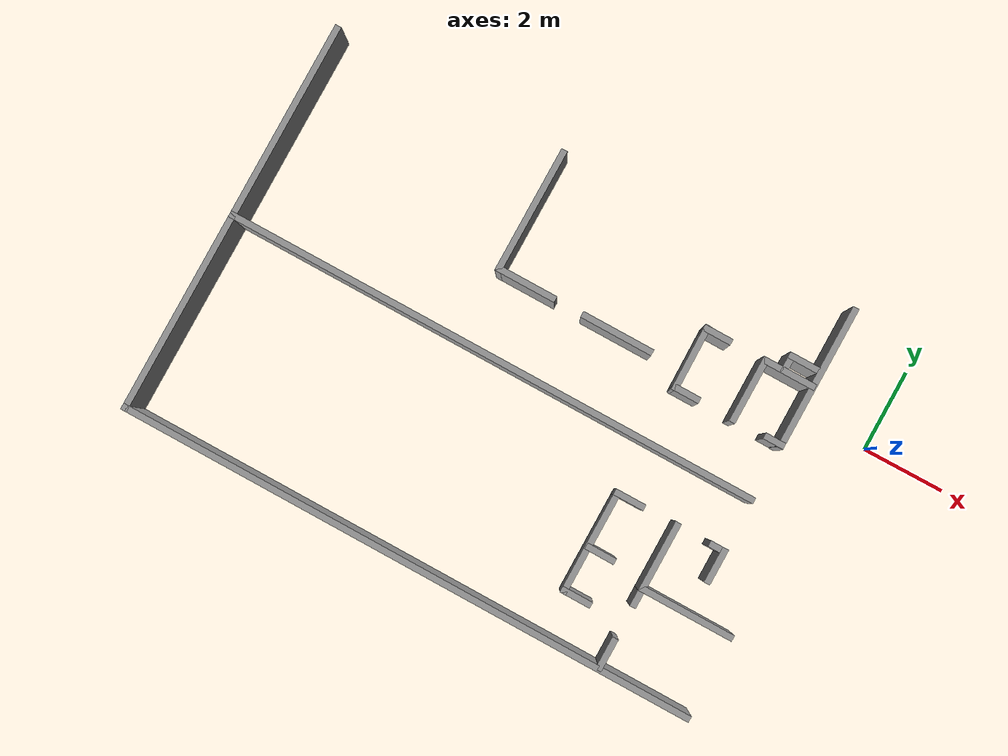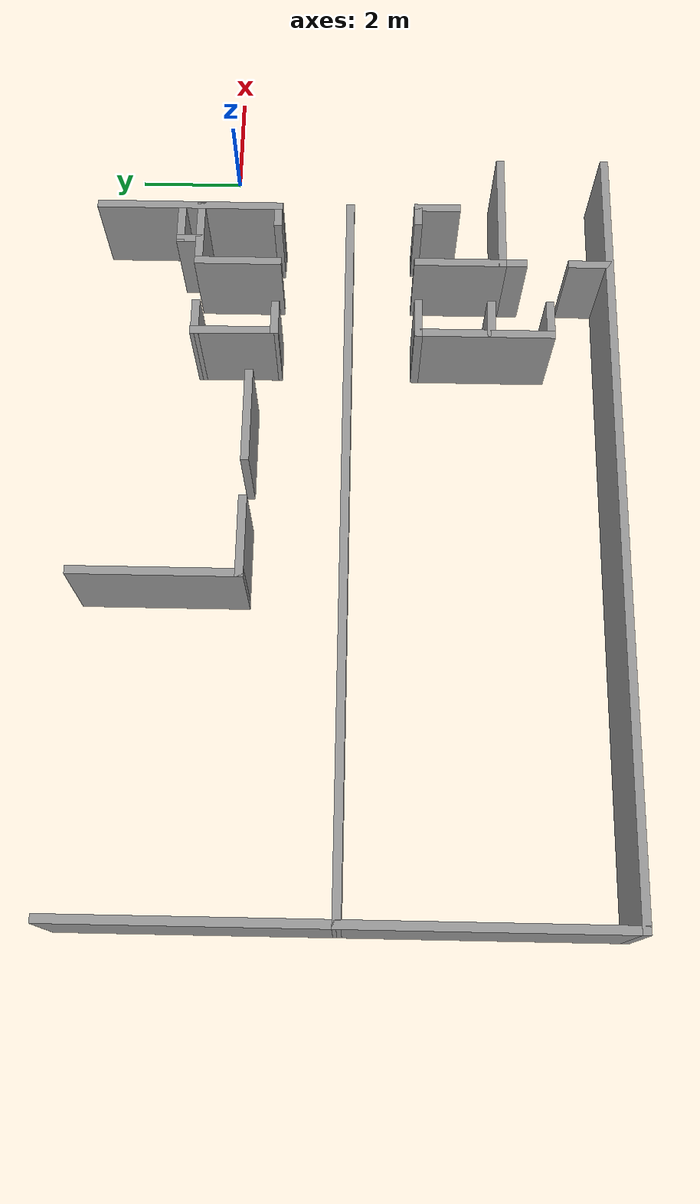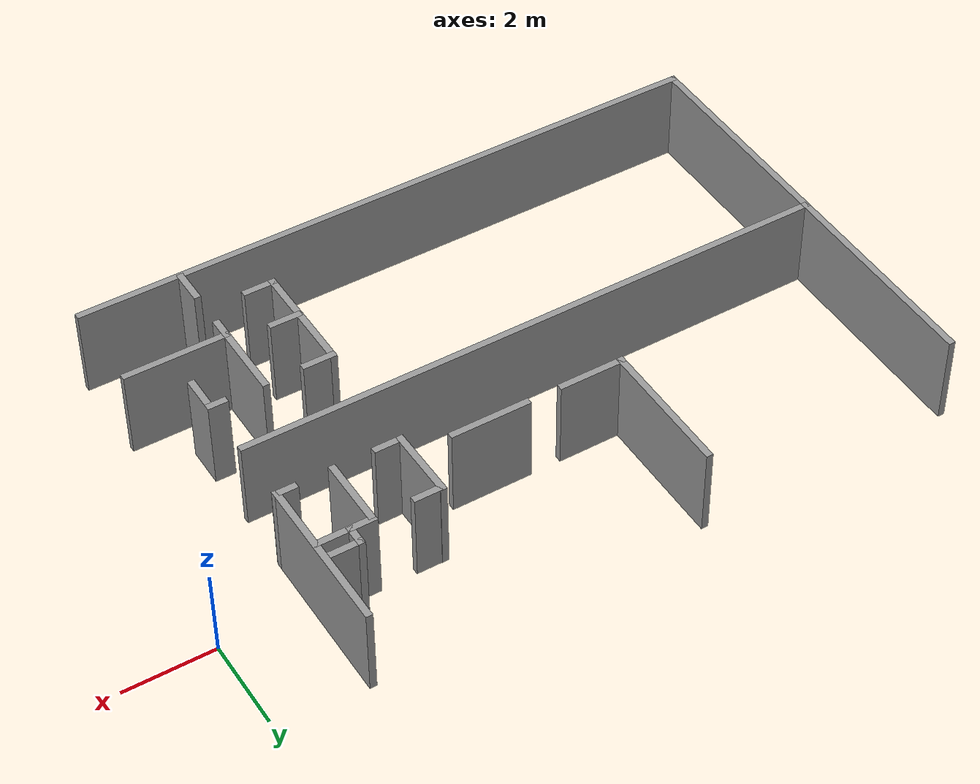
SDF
<sdf version="1.7">
 <model name="HQ">
  <link name="Wall_117">
   <pose>-1.88509 -3.99966 0 0 0 -1.5708</pose>
   <visual name="Wall_117_Visual">
    <pose>0 0 1.25 0 -0 0</pose>
    <geometry><box><size>0.875898 0.15 2</size></box></geometry>
    <material>
     <script><uri>file://media/materials/scripts/gazebo.material</uri><name>Gazebo/Grey</name></script>
     <ambient>1 1 1 1</ambient>
     <shader type="pixel"/>
    </material>
    <meta><layer>0</layer></meta>
   </visual>
   <collision name="Wall_117_Collision">
    <pose>0 0 1.25 0 -0 0</pose>
    <geometry><box><size>0.875898 0.15 2</size></box></geometry>
    <surface>
     <friction>
      <ode><mu>1</mu><mu2>1</mu2><fdir1>0 0 0</fdir1><slip1>0</slip1><slip2>0</slip2></ode>
      <torsional>
       <coefficient>1</coefficient>
       <patch_radius>0</patch_radius>
       <surface_radius>0</surface_radius>
       <use_patch_radius>1</use_patch_radius>
       <ode><slip>0</slip></ode>
      </torsional>
     </friction>
     <bounce><restitution_coefficient>0</restitution_coefficient><threshold>1e+06</threshold></bounce>
     <contact>
      <collide_without_contact>0</collide_without_contact>
      <collide_without_contact_bitmask>1</collide_without_contact_bitmask>
      <collide_bitmask>1</collide_bitmask>
      <ode>
       <soft_cfm>0</soft_cfm>
       <soft_erp>0.2</soft_erp>
       <kp>1e+13</kp>
       <kd>1</kd>
       <max_vel>0.01</max_vel>
       <min_depth>0</min_depth>
      </ode>
      <bullet>
       <split_impulse>1</split_impulse>
       <split_impulse_penetration_threshold>-0.01</split_impulse_penetration_threshold>
       <soft_cfm>0</soft_cfm>
       <soft_erp>0.2</soft_erp>
       <kp>1e+13</kp>
       <kd>1</kd>
      </bullet>
     </contact>
    </surface>
   </collision>
  </link>
  <link name="Wall_122">
   <pose>-1.97205 -5.21705 0 0 -0 3.14159</pose>
   <visual name="Wall_122_Visual">
    <pose>0 0 1.25 0 -0 0</pose>
    <geometry><box><size>2.33526 0.15 2</size></box></geometry>
    <material>
     <script><uri>file://media/materials/scripts/gazebo.material</uri><name>Gazebo/Grey</name></script>
     <ambient>1 1 1 1</ambient>
     <shader type="pixel"/>
    </material>
    <meta><layer>0</layer></meta>
   </visual>
   <collision name="Wall_122_Collision">
    <pose>0 0 1.25 0 -0 0</pose>
    <geometry><box><size>2.33526 0.15 2</size></box></geometry>
    <surface>
     <friction>
      <ode><mu>1</mu><mu2>1</mu2><fdir1>0 0 0</fdir1><slip1>0</slip1><slip2>0</slip2></ode>
      <torsional>
       <coefficient>1</coefficient>
       <patch_radius>0</patch_radius>
       <surface_radius>0</surface_radius>
       <use_patch_radius>1</use_patch_radius>
       <ode><slip>0</slip></ode>
      </torsional>
     </friction>
     <bounce><restitution_coefficient>0</restitution_coefficient><threshold>1e+06</threshold></bounce>
     <contact>
      <collide_without_contact>0</collide_without_contact>
      <collide_without_contact_bitmask>1</collide_without_contact_bitmask>
      <collide_bitmask>1</collide_bitmask>
      <ode>
       <soft_cfm>0</soft_cfm>
       <soft_erp>0.2</soft_erp>
       <kp>1e+13</kp>
       <kd>1</kd>
       <max_vel>0.01</max_vel>
       <min_depth>0</min_depth>
      </ode>
      <bullet>
       <split_impulse>1</split_impulse>
       <split_impulse_penetration_threshold>-0.01</split_impulse_penetration_threshold>
       <soft_cfm>0</soft_cfm>
       <soft_erp>0.2</soft_erp>
       <kp>1e+13</kp>
       <kd>1</kd>
      </bullet>
     </contact>
    </surface>
   </collision>
  </link>
  <link name="Wall_126">
   <pose>-3.06468 -4.42688 0 0 0 -1.5708</pose>
   <visual name="Wall_126_Visual">
    <pose>0 0 1.25 0 -0 0</pose>
    <geometry><box><size>1.73034 0.15 2</size></box></geometry>
    <material>
     <script><uri>file://media/materials/scripts/gazebo.material</uri><name>Gazebo/Grey</name></script>
     <ambient>1 1 1 1</ambient>
     <shader type="pixel"/>
    </material>
    <meta><layer>0</layer></meta>
   </visual>
   <collision name="Wall_126_Collision">
    <pose>0 0 1.25 0 -0 0</pose>
    <geometry><box><size>1.73034 0.15 2</size></box></geometry>
    <surface>
     <friction>
      <ode><mu>1</mu><mu2>1</mu2><fdir1>0 0 0</fdir1><slip1>0</slip1><slip2>0</slip2></ode>
      <torsional>
       <coefficient>1</coefficient>
       <patch_radius>0</patch_radius>
       <surface_radius>0</surface_radius>
       <use_patch_radius>1</use_patch_radius>
       <ode><slip>0</slip></ode>
      </torsional>
     </friction>
     <bounce><restitution_coefficient>0</restitution_coefficient><threshold>1e+06</threshold></bounce>
     <contact>
      <collide_without_contact>0</collide_without_contact>
      <collide_without_contact_bitmask>1</collide_without_contact_bitmask>
      <collide_bitmask>1</collide_bitmask>
      <ode>
       <soft_cfm>0</soft_cfm>
       <soft_erp>0.2</soft_erp>
       <kp>1e+13</kp>
       <kd>1</kd>
       <max_vel>0.01</max_vel>
       <min_depth>0</min_depth>
      </ode>
      <bullet>
       <split_impulse>1</split_impulse>
       <split_impulse_penetration_threshold>-0.01</split_impulse_penetration_threshold>
       <soft_cfm>0</soft_cfm>
       <soft_erp>0.2</soft_erp>
       <kp>1e+13</kp>
       <kd>1</kd>
      </bullet>
     </contact>
    </surface>
   </collision>
  </link>
  <link name="Wall_128">
   <pose>-2.03254 -3.63671 0 0 -0 3.14159</pose>
   <visual name="Wall_128_Visual">
    <pose>0 0 1.25 0 -0 0</pose>
    <geometry><box><size>0.444896 0.15 2</size></box></geometry>
    <material>
     <script><uri>file://media/materials/scripts/gazebo.material</uri><name>Gazebo/Grey</name></script>
     <ambient>1 1 1 1</ambient>
     <shader type="pixel"/>
    </material>
    <meta><layer>0</layer></meta>
   </visual>
   <collision name="Wall_128_Collision">
    <pose>0 0 1.25 0 -0 0</pose>
    <geometry><box><size>0.444896 0.15 2</size></box></geometry>
    <surface>
     <friction>
      <ode><mu>1</mu><mu2>1</mu2><fdir1>0 0 0</fdir1><slip1>0</slip1><slip2>0</slip2></ode>
      <torsional>
       <coefficient>1</coefficient>
       <patch_radius>0</patch_radius>
       <surface_radius>0</surface_radius>
       <use_patch_radius>1</use_patch_radius>
       <ode><slip>0</slip></ode>
      </torsional>
     </friction>
     <bounce><restitution_coefficient>0</restitution_coefficient><threshold>1e+06</threshold></bounce>
     <contact>
      <collide_without_contact>0</collide_without_contact>
      <collide_without_contact_bitmask>1</collide_without_contact_bitmask>
      <collide_bitmask>1</collide_bitmask>
      <ode>
       <soft_cfm>0</soft_cfm>
       <soft_erp>0.2</soft_erp>
       <kp>1e+13</kp>
       <kd>1</kd>
       <max_vel>0.01</max_vel>
       <min_depth>0</min_depth>
      </ode>
      <bullet>
       <split_impulse>1</split_impulse>
       <split_impulse_penetration_threshold>-0.01</split_impulse_penetration_threshold>
       <soft_cfm>0</soft_cfm>
       <soft_erp>0.2</soft_erp>
       <kp>1e+13</kp>
       <kd>1</kd>
      </bullet>
     </contact>
    </surface>
   </collision>
  </link>
  <link name="Wall_130">
   <pose>-3.06468 -5.40986 0 0 0 -1.5708</pose>
   <visual name="Wall_130_Visual">
    <pose>0 0 1.25 0 -0 0</pose>
    <geometry><box><size>0.535707 0.15 2</size></box></geometry>
    <material>
     <script><uri>file://media/materials/scripts/gazebo.material</uri><name>Gazebo/Grey</name></script>
     <ambient>1 1 1 1</ambient>
     <shader type="pixel"/>
    </material>
    <meta><layer>0</layer></meta>
   </visual>
   <collision name="Wall_130_Collision">
    <pose>0 0 1.25 0 -0 0</pose>
    <geometry><box><size>0.535707 0.15 2</size></box></geometry>
    <surface>
     <friction>
      <ode><mu>1</mu><mu2>1</mu2><fdir1>0 0 0</fdir1><slip1>0</slip1><slip2>0</slip2></ode>
      <torsional>
       <coefficient>1</coefficient>
       <patch_radius>0</patch_radius>
       <surface_radius>0</surface_radius>
       <use_patch_radius>1</use_patch_radius>
       <ode><slip>0</slip></ode>
      </torsional>
     </friction>
     <bounce><restitution_coefficient>0</restitution_coefficient><threshold>1e+06</threshold></bounce>
     <contact>
      <collide_without_contact>0</collide_without_contact>
      <collide_without_contact_bitmask>1</collide_without_contact_bitmask>
      <collide_bitmask>1</collide_bitmask>
      <ode>
       <soft_cfm>0</soft_cfm>
       <soft_erp>0.2</soft_erp>
       <kp>1e+13</kp>
       <kd>1</kd>
       <max_vel>0.01</max_vel>
       <min_depth>0</min_depth>
      </ode>
      <bullet>
       <split_impulse>1</split_impulse>
       <split_impulse_penetration_threshold>-0.01</split_impulse_penetration_threshold>
       <soft_cfm>0</soft_cfm>
       <soft_erp>0.2</soft_erp>
       <kp>1e+13</kp>
       <kd>1</kd>
      </bullet>
     </contact>
    </surface>
   </collision>
  </link>
  <link name="Wall_134">
   <pose>-3.06468 -6.85032 0 0 -0 1.5708</pose>
   <visual name="Wall_134_Visual">
    <pose>0 0 1.25 0 -0 0</pose>
    <geometry><box><size>0.800328 0.15 2</size></box></geometry>
    <material>
     <script><uri>file://media/materials/scripts/gazebo.material</uri><name>Gazebo/Grey</name></script>
     <ambient>1 1 1 1</ambient>
     <shader type="pixel"/>
    </material>
    <meta><layer>0</layer></meta>
   </visual>
   <collision name="Wall_134_Collision">
    <pose>0 0 1.25 0 -0 0</pose>
    <geometry><box><size>0.800328 0.15 2</size></box></geometry>
    <surface>
     <friction>
      <ode><mu>1</mu><mu2>1</mu2><fdir1>0 0 0</fdir1><slip1>0</slip1><slip2>0</slip2></ode>
      <torsional>
       <coefficient>1</coefficient>
       <patch_radius>0</patch_radius>
       <surface_radius>0</surface_radius>
       <use_patch_radius>1</use_patch_radius>
       <ode><slip>0</slip></ode>
      </torsional>
     </friction>
     <bounce><restitution_coefficient>0</restitution_coefficient><threshold>1e+06</threshold></bounce>
     <contact>
      <collide_without_contact>0</collide_without_contact>
      <collide_without_contact_bitmask>1</collide_without_contact_bitmask>
      <collide_bitmask>1</collide_bitmask>
      <ode>
       <soft_cfm>0</soft_cfm>
       <soft_erp>0.2</soft_erp>
       <kp>1e+13</kp>
       <kd>1</kd>
       <max_vel>0.01</max_vel>
       <min_depth>0</min_depth>
      </ode>
      <bullet>
       <split_impulse>1</split_impulse>
       <split_impulse_penetration_threshold>-0.01</split_impulse_penetration_threshold>
       <soft_cfm>0</soft_cfm>
       <soft_erp>0.2</soft_erp>
       <kp>1e+13</kp>
       <kd>1</kd>
      </bullet>
     </contact>
    </surface>
   </collision>
  </link>
  <link name="Wall_240">
   <pose>-2.6327 0.685901 0 0 -0 1.5708</pose>
   <visual name="Wall_240_Visual">
    <pose>0 0 1.25 0 -0 0</pose>
    <geometry><box><size>0.490265 0.15 2</size></box></geometry>
    <material>
     <script><uri>file://media/materials/scripts/gazebo.material</uri><name>Gazebo/Grey</name></script>
     <ambient>1 1 1 1</ambient>
     <shader type="pixel"/>
    </material>
    <meta><layer>0</layer></meta>
   </visual>
   <collision name="Wall_240_Collision">
    <pose>0 0 1.25 0 -0 0</pose>
    <geometry><box><size>0.490265 0.15 2</size></box></geometry>
    <surface>
     <friction>
      <ode><mu>1</mu><mu2>1</mu2><fdir1>0 0 0</fdir1><slip1>0</slip1><slip2>0</slip2></ode>
      <torsional>
       <coefficient>1</coefficient>
       <patch_radius>0</patch_radius>
       <surface_radius>0</surface_radius>
       <use_patch_radius>1</use_patch_radius>
       <ode><slip>0</slip></ode>
      </torsional>
     </friction>
     <bounce><restitution_coefficient>0</restitution_coefficient><threshold>1e+06</threshold></bounce>
     <contact>
      <collide_without_contact>0</collide_without_contact>
      <collide_without_contact_bitmask>1</collide_without_contact_bitmask>
      <collide_bitmask>1</collide_bitmask>
      <ode>
       <soft_cfm>0</soft_cfm>
       <soft_erp>0.2</soft_erp>
       <kp>1e+13</kp>
       <kd>1</kd>
       <max_vel>0.01</max_vel>
       <min_depth>0</min_depth>
      </ode>
      <bullet>
       <split_impulse>1</split_impulse>
       <split_impulse_penetration_threshold>-0.01</split_impulse_penetration_threshold>
       <soft_cfm>0</soft_cfm>
       <soft_erp>0.2</soft_erp>
       <kp>1e+13</kp>
       <kd>1</kd>
      </bullet>
     </contact>
    </surface>
   </collision>
  </link>
  <link name="Wall_241">
   <pose>-2.3327 0.856033 0 0 -0 0</pose>
   <visual name="Wall_241_Visual">
    <pose>0 0 1.25 0 -0 0</pose>
    <geometry><box><size>0.75 0.15 2</size></box></geometry>
    <material>
     <script><uri>file://media/materials/scripts/gazebo.material</uri><name>Gazebo/Grey</name></script>
     <ambient>1 1 1 1</ambient>
     <shader type="pixel"/>
    </material>
    <meta><layer>0</layer></meta>
   </visual>
   <collision name="Wall_241_Collision">
    <pose>0 0 1.25 0 -0 0</pose>
    <geometry><box><size>0.75 0.15 2</size></box></geometry>
    <surface>
     <friction>
      <ode><mu>1</mu><mu2>1</mu2><fdir1>0 0 0</fdir1><slip1>0</slip1><slip2>0</slip2></ode>
      <torsional>
       <coefficient>1</coefficient>
       <patch_radius>0</patch_radius>
       <surface_radius>0</surface_radius>
       <use_patch_radius>1</use_patch_radius>
       <ode><slip>0</slip></ode>
      </torsional>
     </friction>
     <bounce><restitution_coefficient>0</restitution_coefficient><threshold>1e+06</threshold></bounce>
     <contact>
      <collide_without_contact>0</collide_without_contact>
      <collide_without_contact_bitmask>1</collide_without_contact_bitmask>
      <collide_bitmask>1</collide_bitmask>
      <ode>
       <soft_cfm>0</soft_cfm>
       <soft_erp>0.2</soft_erp>
       <kp>1e+13</kp>
       <kd>1</kd>
       <max_vel>0.01</max_vel>
       <min_depth>0</min_depth>
      </ode>
      <bullet>
       <split_impulse>1</split_impulse>
       <split_impulse_penetration_threshold>-0.01</split_impulse_penetration_threshold>
       <soft_cfm>0</soft_cfm>
       <soft_erp>0.2</soft_erp>
       <kp>1e+13</kp>
       <kd>1</kd>
      </bullet>
     </contact>
    </surface>
   </collision>
  </link>
  <link name="Wall_244">
   <pose>-4.25062 -3.64086 0 0 -0 3.14159</pose>
   <visual name="Wall_244_Visual">
    <pose>0 0 1.25 0 -0 0</pose>
    <geometry><box><size>0.75 0.15 2</size></box></geometry>
    <material>
     <script><uri>file://media/materials/scripts/gazebo.material</uri><name>Gazebo/Grey</name></script>
     <ambient>1 1 1 1</ambient>
     <shader type="pixel"/>
    </material>
    <meta><layer>0</layer></meta>
   </visual>
   <collision name="Wall_244_Collision">
    <pose>0 0 1.25 0 -0 0</pose>
    <geometry><box><size>0.75 0.15 2</size></box></geometry>
    <surface>
     <friction>
      <ode><mu>1</mu><mu2>1</mu2><fdir1>0 0 0</fdir1><slip1>0</slip1><slip2>0</slip2></ode>
      <torsional>
       <coefficient>1</coefficient>
       <patch_radius>0</patch_radius>
       <surface_radius>0</surface_radius>
       <use_patch_radius>1</use_patch_radius>
       <ode><slip>0</slip></ode>
      </torsional>
     </friction>
     <bounce><restitution_coefficient>0</restitution_coefficient><threshold>1e+06</threshold></bounce>
     <contact>
      <collide_without_contact>0</collide_without_contact>
      <collide_without_contact_bitmask>1</collide_without_contact_bitmask>
      <collide_bitmask>1</collide_bitmask>
      <ode>
       <soft_cfm>0</soft_cfm>
       <soft_erp>0.2</soft_erp>
       <kp>1e+13</kp>
       <kd>1</kd>
       <max_vel>0.01</max_vel>
       <min_depth>0</min_depth>
      </ode>
      <bullet>
       <split_impulse>1</split_impulse>
       <split_impulse_penetration_threshold>-0.01</split_impulse_penetration_threshold>
       <soft_cfm>0</soft_cfm>
       <soft_erp>0.2</soft_erp>
       <kp>1e+13</kp>
       <kd>1</kd>
      </bullet>
     </contact>
    </surface>
   </collision>
  </link>
  <link name="Wall_247">
   <pose>-4.55062 -4.85987 0 0 0 -1.5708</pose>
   <visual name="Wall_247_Visual">
    <pose>0 0 1.25 0 -0 0</pose>
    <geometry><box><size>2.58803 0.15 2</size></box></geometry>
    <material>
     <script><uri>file://media/materials/scripts/gazebo.material</uri><name>Gazebo/Grey</name></script>
     <ambient>1 1 1 1</ambient>
     <shader type="pixel"/>
    </material>
    <meta><layer>0</layer></meta>
   </visual>
   <collision name="Wall_247_Collision">
    <pose>0 0 1.25 0 -0 0</pose>
    <geometry><box><size>2.58803 0.15 2</size></box></geometry>
    <surface>
     <friction>
      <ode><mu>1</mu><mu2>1</mu2><fdir1>0 0 0</fdir1><slip1>0</slip1><slip2>0</slip2></ode>
      <torsional>
       <coefficient>1</coefficient>
       <patch_radius>0</patch_radius>
       <surface_radius>0</surface_radius>
       <use_patch_radius>1</use_patch_radius>
       <ode><slip>0</slip></ode>
      </torsional>
     </friction>
     <bounce><restitution_coefficient>0</restitution_coefficient><threshold>1e+06</threshold></bounce>
     <contact>
      <collide_without_contact>0</collide_without_contact>
      <collide_without_contact_bitmask>1</collide_without_contact_bitmask>
      <collide_bitmask>1</collide_bitmask>
      <ode>
       <soft_cfm>0</soft_cfm>
       <soft_erp>0.2</soft_erp>
       <kp>1e+13</kp>
       <kd>1</kd>
       <max_vel>0.01</max_vel>
       <min_depth>0</min_depth>
      </ode>
      <bullet>
       <split_impulse>1</split_impulse>
       <split_impulse_penetration_threshold>-0.01</split_impulse_penetration_threshold>
       <soft_cfm>0</soft_cfm>
       <soft_erp>0.2</soft_erp>
       <kp>1e+13</kp>
       <kd>1</kd>
      </bullet>
     </contact>
    </surface>
   </collision>
  </link>
  <link name="Wall_251">
   <pose>-4.25062 -6.07887 0 0 -0 0</pose>
   <visual name="Wall_251_Visual">
    <pose>0 0 1.25 0 -0 0</pose>
    <geometry><box><size>0.75 0.15 2</size></box></geometry>
    <material>
     <script><uri>file://media/materials/scripts/gazebo.material</uri><name>Gazebo/Grey</name></script>
     <ambient>1 1 1 1</ambient>
     <shader type="pixel"/>
    </material>
    <meta><layer>0</layer></meta>
   </visual>
   <collision name="Wall_251_Collision">
    <pose>0 0 1.25 0 -0 0</pose>
    <geometry><box><size>0.75 0.15 2</size></box></geometry>
    <surface>
     <friction>
      <ode><mu>1</mu><mu2>1</mu2><fdir1>0 0 0</fdir1><slip1>0</slip1><slip2>0</slip2></ode>
      <torsional>
       <coefficient>1</coefficient>
       <patch_radius>0</patch_radius>
       <surface_radius>0</surface_radius>
       <use_patch_radius>1</use_patch_radius>
       <ode><slip>0</slip></ode>
      </torsional>
     </friction>
     <bounce><restitution_coefficient>0</restitution_coefficient><threshold>1e+06</threshold></bounce>
     <contact>
      <collide_without_contact>0</collide_without_contact>
      <collide_without_contact_bitmask>1</collide_without_contact_bitmask>
      <collide_bitmask>1</collide_bitmask>
      <ode>
       <soft_cfm>0</soft_cfm>
       <soft_erp>0.2</soft_erp>
       <kp>1e+13</kp>
       <kd>1</kd>
       <max_vel>0.01</max_vel>
       <min_depth>0</min_depth>
      </ode>
      <bullet>
       <split_impulse>1</split_impulse>
       <split_impulse_penetration_threshold>-0.01</split_impulse_penetration_threshold>
       <soft_cfm>0</soft_cfm>
       <soft_erp>0.2</soft_erp>
       <kp>1e+13</kp>
       <kd>1</kd>
      </bullet>
     </contact>
    </surface>
   </collision>
  </link>
  <link name="Wall_258">
   <pose>-4.23912 -4.98862 0 0 -0 3.13379</pose>
   <visual name="Wall_258_Visual">
    <pose>0 0 1.25 0 -0 0</pose>
    <geometry><box><size>0.727018 0.15 2</size></box></geometry>
    <material>
     <script><uri>file://media/materials/scripts/gazebo.material</uri><name>Gazebo/Grey</name></script>
     <ambient>1 1 1 1</ambient>
     <shader type="pixel"/>
    </material>
    <meta><layer>0</layer></meta>
   </visual>
   <collision name="Wall_258_Collision">
    <pose>0 0 1.25 0 -0 0</pose>
    <geometry><box><size>0.727018 0.15 2</size></box></geometry>
    <surface>
     <friction>
      <ode><mu>1</mu><mu2>1</mu2><fdir1>0 0 0</fdir1><slip1>0</slip1><slip2>0</slip2></ode>
      <torsional>
       <coefficient>1</coefficient>
       <patch_radius>0</patch_radius>
       <surface_radius>0</surface_radius>
       <use_patch_radius>1</use_patch_radius>
       <ode><slip>0</slip></ode>
      </torsional>
     </friction>
     <bounce><restitution_coefficient>0</restitution_coefficient><threshold>1e+06</threshold></bounce>
     <contact>
      <collide_without_contact>0</collide_without_contact>
      <collide_without_contact_bitmask>1</collide_without_contact_bitmask>
      <collide_bitmask>1</collide_bitmask>
      <ode>
       <soft_cfm>0</soft_cfm>
       <soft_erp>0.2</soft_erp>
       <kp>1e+13</kp>
       <kd>1</kd>
       <max_vel>0.01</max_vel>
       <min_depth>0</min_depth>
      </ode>
      <bullet>
       <split_impulse>1</split_impulse>
       <split_impulse_penetration_threshold>-0.01</split_impulse_penetration_threshold>
       <soft_cfm>0</soft_cfm>
       <soft_erp>0.2</soft_erp>
       <kp>1e+13</kp>
       <kd>1</kd>
      </bullet>
     </contact>
    </surface>
   </collision>
  </link>
  <link name="Wall_31">
   <pose>-7.9114 -7.22017 0 0 -0 3.14159</pose>
   <visual name="Wall_31_Visual">
    <pose>0 0 1.25 0 -0 0</pose>
    <geometry><box><size>14.25 0.15 2</size></box></geometry>
    <material>
     <script><uri>file://media/materials/scripts/gazebo.material</uri><name>Gazebo/Grey</name></script>
     <ambient>1 1 1 1</ambient>
     <shader type="pixel"/>
    </material>
    <meta><layer>0</layer></meta>
   </visual>
   <collision name="Wall_31_Collision">
    <pose>0 0 1.25 0 -0 0</pose>
    <geometry><box><size>14.25 0.15 2</size></box></geometry>
    <surface>
     <friction>
      <ode><mu>1</mu><mu2>1</mu2><fdir1>0 0 0</fdir1><slip1>0</slip1><slip2>0</slip2></ode>
      <torsional>
       <coefficient>1</coefficient>
       <patch_radius>0</patch_radius>
       <surface_radius>0</surface_radius>
       <use_patch_radius>1</use_patch_radius>
       <ode><slip>0</slip></ode>
      </torsional>
     </friction>
     <bounce><restitution_coefficient>0</restitution_coefficient><threshold>1e+06</threshold></bounce>
     <contact>
      <collide_without_contact>0</collide_without_contact>
      <collide_without_contact_bitmask>1</collide_without_contact_bitmask>
      <collide_bitmask>1</collide_bitmask>
      <ode>
       <soft_cfm>0</soft_cfm>
       <soft_erp>0.2</soft_erp>
       <kp>1e+13</kp>
       <kd>1</kd>
       <max_vel>0.01</max_vel>
       <min_depth>0</min_depth>
      </ode>
      <bullet>
       <split_impulse>1</split_impulse>
       <split_impulse_penetration_threshold>-0.01</split_impulse_penetration_threshold>
       <soft_cfm>0</soft_cfm>
       <soft_erp>0.2</soft_erp>
       <kp>1e+13</kp>
       <kd>1</kd>
      </bullet>
     </contact>
    </surface>
   </collision>
  </link>
  <link name="Wall_33">
   <pose>-14.9607 -4.79146 0 0 -0 1.57052</pose>
   <visual name="Wall_33_Visual">
    <pose>0 0 1.25 0 -0 0</pose>
    <geometry><box><size>5.00744 0.15 2</size></box></geometry>
    <material>
     <script><uri>file://media/materials/scripts/gazebo.material</uri><name>Gazebo/Grey</name></script>
     <ambient>1 1 1 1</ambient>
     <shader type="pixel"/>
    </material>
    <meta><layer>0</layer></meta>
   </visual>
   <collision name="Wall_33_Collision">
    <pose>0 0 1.25 0 -0 0</pose>
    <geometry><box><size>5.00744 0.15 2</size></box></geometry>
    <surface>
     <friction>
      <ode><mu>1</mu><mu2>1</mu2><fdir1>0 0 0</fdir1><slip1>0</slip1><slip2>0</slip2></ode>
      <torsional>
       <coefficient>1</coefficient>
       <patch_radius>0</patch_radius>
       <surface_radius>0</surface_radius>
       <use_patch_radius>1</use_patch_radius>
       <ode><slip>0</slip></ode>
      </torsional>
     </friction>
     <bounce><restitution_coefficient>0</restitution_coefficient><threshold>1e+06</threshold></bounce>
     <contact>
      <collide_without_contact>0</collide_without_contact>
      <collide_without_contact_bitmask>1</collide_without_contact_bitmask>
      <collide_bitmask>1</collide_bitmask>
      <ode>
       <soft_cfm>0</soft_cfm>
       <soft_erp>0.2</soft_erp>
       <kp>1e+13</kp>
       <kd>1</kd>
       <max_vel>0.01</max_vel>
       <min_depth>0</min_depth>
      </ode>
      <bullet>
       <split_impulse>1</split_impulse>
       <split_impulse_penetration_threshold>-0.01</split_impulse_penetration_threshold>
       <soft_cfm>0</soft_cfm>
       <soft_erp>0.2</soft_erp>
       <kp>1e+13</kp>
       <kd>1</kd>
      </bullet>
     </contact>
    </surface>
   </collision>
  </link>
  <link name="Wall_34">
   <pose>-8.43629 -2.35401 0 0 -0 0.00134</pose>
   <visual name="Wall_34_Visual">
    <pose>0 0 1.25 0 -0 0</pose>
    <geometry><box><size>13.1976 0.15 2</size></box></geometry>
    <material>
     <script><uri>file://media/materials/scripts/gazebo.material</uri><name>Gazebo/Grey</name></script>
     <ambient>1 1 1 1</ambient>
     <shader type="pixel"/>
    </material>
    <meta><layer>0</layer></meta>
   </visual>
   <collision name="Wall_34_Collision">
    <pose>0 0 1.25 0 -0 0</pose>
    <geometry><box><size>13.1976 0.15 2</size></box></geometry>
    <surface>
     <friction>
      <ode><mu>1</mu><mu2>1</mu2><fdir1>0 0 0</fdir1><slip1>0</slip1><slip2>0</slip2></ode>
      <torsional>
       <coefficient>1</coefficient>
       <patch_radius>0</patch_radius>
       <surface_radius>0</surface_radius>
       <use_patch_radius>1</use_patch_radius>
       <ode><slip>0</slip></ode>
      </torsional>
     </friction>
     <bounce><restitution_coefficient>0</restitution_coefficient><threshold>1e+06</threshold></bounce>
     <contact>
      <collide_without_contact>0</collide_without_contact>
      <collide_without_contact_bitmask>1</collide_without_contact_bitmask>
      <collide_bitmask>1</collide_bitmask>
      <ode>
       <soft_cfm>0</soft_cfm>
       <soft_erp>0.2</soft_erp>
       <kp>1e+13</kp>
       <kd>1</kd>
       <max_vel>0.01</max_vel>
       <min_depth>0</min_depth>
      </ode>
      <bullet>
       <split_impulse>1</split_impulse>
       <split_impulse_penetration_threshold>-0.01</split_impulse_penetration_threshold>
       <soft_cfm>0</soft_cfm>
       <soft_erp>0.2</soft_erp>
       <kp>1e+13</kp>
       <kd>1</kd>
      </bullet>
     </contact>
    </surface>
   </collision>
  </link>
  <link name="Wall_36">
   <pose>-14.9601 0.007151 0 0 -0 1.5708</pose>
   <visual name="Wall_36_Visual">
    <pose>0 0 1.25 0 -0 0</pose>
    <geometry><box><size>4.88994 0.15 2</size></box></geometry>
    <material>
     <script><uri>file://media/materials/scripts/gazebo.material</uri><name>Gazebo/Grey</name></script>
     <ambient>1 1 1 1</ambient>
     <shader type="pixel"/>
    </material>
    <meta><layer>0</layer></meta>
   </visual>
   <collision name="Wall_36_Collision">
    <pose>0 0 1.25 0 -0 0</pose>
    <geometry><box><size>4.88994 0.15 2</size></box></geometry>
    <surface>
     <friction>
      <ode><mu>1</mu><mu2>1</mu2><fdir1>0 0 0</fdir1><slip1>0</slip1><slip2>0</slip2></ode>
      <torsional>
       <coefficient>1</coefficient>
       <patch_radius>0</patch_radius>
       <surface_radius>0</surface_radius>
       <use_patch_radius>1</use_patch_radius>
       <ode><slip>0</slip></ode>
      </torsional>
     </friction>
     <bounce><restitution_coefficient>0</restitution_coefficient><threshold>1e+06</threshold></bounce>
     <contact>
      <collide_without_contact>0</collide_without_contact>
      <collide_without_contact_bitmask>1</collide_without_contact_bitmask>
      <collide_bitmask>1</collide_bitmask>
      <ode>
       <soft_cfm>0</soft_cfm>
       <soft_erp>0.2</soft_erp>
       <kp>1e+13</kp>
       <kd>1</kd>
       <max_vel>0.01</max_vel>
       <min_depth>0</min_depth>
      </ode>
      <bullet>
       <split_impulse>1</split_impulse>
       <split_impulse_penetration_threshold>-0.01</split_impulse_penetration_threshold>
       <soft_cfm>0</soft_cfm>
       <soft_erp>0.2</soft_erp>
       <kp>1e+13</kp>
       <kd>1</kd>
      </bullet>
     </contact>
    </surface>
   </collision>
  </link>
  <link name="Wall_45">
   <pose>-1.9023 0.710551 0 0 0 -1.5708</pose>
   <visual name="Wall_45_Visual">
    <pose>0 0 1.25 0 -0 0</pose>
    <geometry><box><size>3.53478 0.15 2</size></box></geometry>
    <material>
     <script><uri>file://media/materials/scripts/gazebo.material</uri><name>Gazebo/Grey</name></script>
     <ambient>1 1 1 1</ambient>
     <shader type="pixel"/>
    </material>
    <meta><layer>0</layer></meta>
   </visual>
   <collision name="Wall_45_Collision">
    <pose>0 0 1.25 0 -0 0</pose>
    <geometry><box><size>3.53478 0.15 2</size></box></geometry>
    <surface>
     <friction>
      <ode><mu>1</mu><mu2>1</mu2><fdir1>0 0 0</fdir1><slip1>0</slip1><slip2>0</slip2></ode>
      <torsional>
       <coefficient>1</coefficient>
       <patch_radius>0</patch_radius>
       <surface_radius>0</surface_radius>
       <use_patch_radius>1</use_patch_radius>
       <ode><slip>0</slip></ode>
      </torsional>
     </friction>
     <bounce><restitution_coefficient>0</restitution_coefficient><threshold>1e+06</threshold></bounce>
     <contact>
      <collide_without_contact>0</collide_without_contact>
      <collide_without_contact_bitmask>1</collide_without_contact_bitmask>
      <collide_bitmask>1</collide_bitmask>
      <ode>
       <soft_cfm>0</soft_cfm>
       <soft_erp>0.2</soft_erp>
       <kp>1e+13</kp>
       <kd>1</kd>
       <max_vel>0.01</max_vel>
       <min_depth>0</min_depth>
      </ode>
      <bullet>
       <split_impulse>1</split_impulse>
       <split_impulse_penetration_threshold>-0.01</split_impulse_penetration_threshold>
       <soft_cfm>0</soft_cfm>
       <soft_erp>0.2</soft_erp>
       <kp>1e+13</kp>
       <kd>1</kd>
      </bullet>
     </contact>
    </surface>
   </collision>
  </link>
  <link name="Wall_47">
   <pose>-2.0773 -0.973145 0 0 -0 3.14159</pose>
   <visual name="Wall_47_Visual">
    <pose>0 0 1.25 0 -0 0</pose>
    <geometry><box><size>0.5 0.15 2</size></box></geometry>
    <material>
     <script><uri>file://media/materials/scripts/gazebo.material</uri><name>Gazebo/Grey</name></script>
     <ambient>1 1 1 1</ambient>
     <shader type="pixel"/>
    </material>
    <meta><layer>0</layer></meta>
   </visual>
   <collision name="Wall_47_Collision">
    <pose>0 0 1.25 0 -0 0</pose>
    <geometry><box><size>0.5 0.15 2</size></box></geometry>
    <surface>
     <friction>
      <ode><mu>1</mu><mu2>1</mu2><fdir1>0 0 0</fdir1><slip1>0</slip1><slip2>0</slip2></ode>
      <torsional>
       <coefficient>1</coefficient>
       <patch_radius>0</patch_radius>
       <surface_radius>0</surface_radius>
       <use_patch_radius>1</use_patch_radius>
       <ode><slip>0</slip></ode>
      </torsional>
     </friction>
     <bounce><restitution_coefficient>0</restitution_coefficient><threshold>1e+06</threshold></bounce>
     <contact>
      <collide_without_contact>0</collide_without_contact>
      <collide_without_contact_bitmask>1</collide_without_contact_bitmask>
      <collide_bitmask>1</collide_bitmask>
      <ode>
       <soft_cfm>0</soft_cfm>
       <soft_erp>0.2</soft_erp>
       <kp>1e+13</kp>
       <kd>1</kd>
       <max_vel>0.01</max_vel>
       <min_depth>0</min_depth>
      </ode>
      <bullet>
       <split_impulse>1</split_impulse>
       <split_impulse_penetration_threshold>-0.01</split_impulse_penetration_threshold>
       <soft_cfm>0</soft_cfm>
       <soft_erp>0.2</soft_erp>
       <kp>1e+13</kp>
       <kd>1</kd>
      </bullet>
     </contact>
    </surface>
   </collision>
  </link>
  <link name="Wall_49">
   <pose>-3.09928 -0.248315 0 0 -0 1.5708</pose>
   <visual name="Wall_49_Visual">
    <pose>0 0 1.25 0 -0 0</pose>
    <geometry><box><size>1.62826 0.15 2</size></box></geometry>
    <material>
     <script><uri>file://media/materials/scripts/gazebo.material</uri><name>Gazebo/Grey</name></script>
     <ambient>1 1 1 1</ambient>
     <shader type="pixel"/>
    </material>
    <meta><layer>0</layer></meta>
   </visual>
   <collision name="Wall_49_Collision">
    <pose>0 0 1.25 0 -0 0</pose>
    <geometry><box><size>1.62826 0.15 2</size></box></geometry>
    <surface>
     <friction>
      <ode><mu>1</mu><mu2>1</mu2><fdir1>0 0 0</fdir1><slip1>0</slip1><slip2>0</slip2></ode>
      <torsional>
       <coefficient>1</coefficient>
       <patch_radius>0</patch_radius>
       <surface_radius>0</surface_radius>
       <use_patch_radius>1</use_patch_radius>
       <ode><slip>0</slip></ode>
      </torsional>
     </friction>
     <bounce><restitution_coefficient>0</restitution_coefficient><threshold>1e+06</threshold></bounce>
     <contact>
      <collide_without_contact>0</collide_without_contact>
      <collide_without_contact_bitmask>1</collide_without_contact_bitmask>
      <collide_bitmask>1</collide_bitmask>
      <ode>
       <soft_cfm>0</soft_cfm>
       <soft_erp>0.2</soft_erp>
       <kp>1e+13</kp>
       <kd>1</kd>
       <max_vel>0.01</max_vel>
       <min_depth>0</min_depth>
      </ode>
      <bullet>
       <split_impulse>1</split_impulse>
       <split_impulse_penetration_threshold>-0.01</split_impulse_penetration_threshold>
       <soft_cfm>0</soft_cfm>
       <soft_erp>0.2</soft_erp>
       <kp>1e+13</kp>
       <kd>1</kd>
      </bullet>
     </contact>
    </surface>
   </collision>
  </link>
  <link name="Wall_50">
   <pose>-2.51232 0.490815 0 0 -0 0</pose>
   <visual name="Wall_50_Visual">
    <pose>0 0 1.25 0 -0 0</pose>
    <geometry><box><size>1.32391 0.15 2</size></box></geometry>
    <material>
     <script><uri>file://media/materials/scripts/gazebo.material</uri><name>Gazebo/Grey</name></script>
     <ambient>1 1 1 1</ambient>
     <shader type="pixel"/>
    </material>
    <meta><layer>0</layer></meta>
   </visual>
   <collision name="Wall_50_Collision">
    <pose>0 0 1.25 0 -0 0</pose>
    <geometry><box><size>1.32391 0.15 2</size></box></geometry>
    <surface>
     <friction>
      <ode><mu>1</mu><mu2>1</mu2><fdir1>0 0 0</fdir1><slip1>0</slip1><slip2>0</slip2></ode>
      <torsional>
       <coefficient>1</coefficient>
       <patch_radius>0</patch_radius>
       <surface_radius>0</surface_radius>
       <use_patch_radius>1</use_patch_radius>
       <ode><slip>0</slip></ode>
      </torsional>
     </friction>
     <bounce><restitution_coefficient>0</restitution_coefficient><threshold>1e+06</threshold></bounce>
     <contact>
      <collide_without_contact>0</collide_without_contact>
      <collide_without_contact_bitmask>1</collide_without_contact_bitmask>
      <collide_bitmask>1</collide_bitmask>
      <ode>
       <soft_cfm>0</soft_cfm>
       <soft_erp>0.2</soft_erp>
       <kp>1e+13</kp>
       <kd>1</kd>
       <max_vel>0.01</max_vel>
       <min_depth>0</min_depth>
      </ode>
      <bullet>
       <split_impulse>1</split_impulse>
       <split_impulse_penetration_threshold>-0.01</split_impulse_penetration_threshold>
       <soft_cfm>0</soft_cfm>
       <soft_erp>0.2</soft_erp>
       <kp>1e+13</kp>
       <kd>1</kd>
      </bullet>
     </contact>
    </surface>
   </collision>
  </link>
  <link name="Wall_55">
   <pose>-4.56015 -0.248315 0 0 -0 1.58256</pose>
   <visual name="Wall_55_Visual">
    <pose>0 0 1.25 0 -0 0</pose>
    <geometry><box><size>1.62836 0.15 2</size></box></geometry>
    <material>
     <script><uri>file://media/materials/scripts/gazebo.material</uri><name>Gazebo/Grey</name></script>
     <ambient>1 1 1 1</ambient>
     <shader type="pixel"/>
    </material>
    <meta><layer>0</layer></meta>
   </visual>
   <collision name="Wall_55_Collision">
    <pose>0 0 1.25 0 -0 0</pose>
    <geometry><box><size>1.62836 0.15 2</size></box></geometry>
    <surface>
     <friction>
      <ode><mu>1</mu><mu2>1</mu2><fdir1>0 0 0</fdir1><slip1>0</slip1><slip2>0</slip2></ode>
      <torsional>
       <coefficient>1</coefficient>
       <patch_radius>0</patch_radius>
       <surface_radius>0</surface_radius>
       <use_patch_radius>1</use_patch_radius>
       <ode><slip>0</slip></ode>
      </torsional>
     </friction>
     <bounce><restitution_coefficient>0</restitution_coefficient><threshold>1e+06</threshold></bounce>
     <contact>
      <collide_without_contact>0</collide_without_contact>
      <collide_without_contact_bitmask>1</collide_without_contact_bitmask>
      <collide_bitmask>1</collide_bitmask>
      <ode>
       <soft_cfm>0</soft_cfm>
       <soft_erp>0.2</soft_erp>
       <kp>1e+13</kp>
       <kd>1</kd>
       <max_vel>0.01</max_vel>
       <min_depth>0</min_depth>
      </ode>
      <bullet>
       <split_impulse>1</split_impulse>
       <split_impulse_penetration_threshold>-0.01</split_impulse_penetration_threshold>
       <soft_cfm>0</soft_cfm>
       <soft_erp>0.2</soft_erp>
       <kp>1e+13</kp>
       <kd>1</kd>
      </bullet>
     </contact>
    </surface>
   </collision>
  </link>
  <link name="Wall_56">
   <pose>-4.29493 0.48212 0 0 -0 0</pose>
   <visual name="Wall_56_Visual">
    <pose>0 0 1.25 0 -0 0</pose>
    <geometry><box><size>0.697826 0.15 2</size></box></geometry>
    <material>
     <script><uri>file://media/materials/scripts/gazebo.material</uri><name>Gazebo/Grey</name></script>
     <ambient>1 1 1 1</ambient>
     <shader type="pixel"/>
    </material>
    <meta><layer>0</layer></meta>
   </visual>
   <collision name="Wall_56_Collision">
    <pose>0 0 1.25 0 -0 0</pose>
    <geometry><box><size>0.697826 0.15 2</size></box></geometry>
    <surface>
     <friction>
      <ode><mu>1</mu><mu2>1</mu2><fdir1>0 0 0</fdir1><slip1>0</slip1><slip2>0</slip2></ode>
      <torsional>
       <coefficient>1</coefficient>
       <patch_radius>0</patch_radius>
       <surface_radius>0</surface_radius>
       <use_patch_radius>1</use_patch_radius>
       <ode><slip>0</slip></ode>
      </torsional>
     </friction>
     <bounce><restitution_coefficient>0</restitution_coefficient><threshold>1e+06</threshold></bounce>
     <contact>
      <collide_without_contact>0</collide_without_contact>
      <collide_without_contact_bitmask>1</collide_without_contact_bitmask>
      <collide_bitmask>1</collide_bitmask>
      <ode>
       <soft_cfm>0</soft_cfm>
       <soft_erp>0.2</soft_erp>
       <kp>1e+13</kp>
       <kd>1</kd>
       <max_vel>0.01</max_vel>
       <min_depth>0</min_depth>
      </ode>
      <bullet>
       <split_impulse>1</split_impulse>
       <split_impulse_penetration_threshold>-0.01</split_impulse_penetration_threshold>
       <soft_cfm>0</soft_cfm>
       <soft_erp>0.2</soft_erp>
       <kp>1e+13</kp>
       <kd>1</kd>
      </bullet>
     </contact>
    </surface>
   </collision>
  </link>
  <link name="Wall_60">
   <pose>-4.28623 -0.987445 0 0 -0 0</pose>
   <visual name="Wall_60_Visual">
    <pose>0 0 1.25 0 -0 0</pose>
    <geometry><box><size>0.680506 0.15 2</size></box></geometry>
    <material>
     <script><uri>file://media/materials/scripts/gazebo.material</uri><name>Gazebo/Grey</name></script>
     <ambient>1 1 1 1</ambient>
     <shader type="pixel"/>
    </material>
    <meta><layer>0</layer></meta>
   </visual>
   <collision name="Wall_60_Collision">
    <pose>0 0 1.25 0 -0 0</pose>
    <geometry><box><size>0.680506 0.15 2</size></box></geometry>
    <surface>
     <friction>
      <ode><mu>1</mu><mu2>1</mu2><fdir1>0 0 0</fdir1><slip1>0</slip1><slip2>0</slip2></ode>
      <torsional>
       <coefficient>1</coefficient>
       <patch_radius>0</patch_radius>
       <surface_radius>0</surface_radius>
       <use_patch_radius>1</use_patch_radius>
       <ode><slip>0</slip></ode>
      </torsional>
     </friction>
     <bounce><restitution_coefficient>0</restitution_coefficient><threshold>1e+06</threshold></bounce>
     <contact>
      <collide_without_contact>0</collide_without_contact>
      <collide_without_contact_bitmask>1</collide_without_contact_bitmask>
      <collide_bitmask>1</collide_bitmask>
      <ode>
       <soft_cfm>0</soft_cfm>
       <soft_erp>0.2</soft_erp>
       <kp>1e+13</kp>
       <kd>1</kd>
       <max_vel>0.01</max_vel>
       <min_depth>0</min_depth>
      </ode>
      <bullet>
       <split_impulse>1</split_impulse>
       <split_impulse_penetration_threshold>-0.01</split_impulse_penetration_threshold>
       <soft_cfm>0</soft_cfm>
       <soft_erp>0.2</soft_erp>
       <kp>1e+13</kp>
       <kd>1</kd>
      </bullet>
     </contact>
    </surface>
   </collision>
  </link>
  <link name="Wall_69">
   <pose>-6.25145 -0.561358 0 0 -0 0</pose>
   <visual name="Wall_69_Visual">
    <pose>0 0 1.25 0 -0 0</pose>
    <geometry><box><size>1.77611 0.15 2</size></box></geometry>
    <material>
     <script><uri>file://media/materials/scripts/gazebo.material</uri><name>Gazebo/Grey</name></script>
     <ambient>1 1 1 1</ambient>
     <shader type="pixel"/>
    </material>
    <meta><layer>0</layer></meta>
   </visual>
   <collision name="Wall_69_Collision">
    <pose>0 0 1.25 0 -0 0</pose>
    <geometry><box><size>1.77611 0.15 2</size></box></geometry>
    <surface>
     <friction>
      <ode><mu>1</mu><mu2>1</mu2><fdir1>0 0 0</fdir1><slip1>0</slip1><slip2>0</slip2></ode>
      <torsional>
       <coefficient>1</coefficient>
       <patch_radius>0</patch_radius>
       <surface_radius>0</surface_radius>
       <use_patch_radius>1</use_patch_radius>
       <ode><slip>0</slip></ode>
      </torsional>
     </friction>
     <bounce><restitution_coefficient>0</restitution_coefficient><threshold>1e+06</threshold></bounce>
     <contact>
      <collide_without_contact>0</collide_without_contact>
      <collide_without_contact_bitmask>1</collide_without_contact_bitmask>
      <collide_bitmask>1</collide_bitmask>
      <ode>
       <soft_cfm>0</soft_cfm>
       <soft_erp>0.2</soft_erp>
       <kp>1e+13</kp>
       <kd>1</kd>
       <max_vel>0.01</max_vel>
       <min_depth>0</min_depth>
      </ode>
      <bullet>
       <split_impulse>1</split_impulse>
       <split_impulse_penetration_threshold>-0.01</split_impulse_penetration_threshold>
       <soft_cfm>0</soft_cfm>
       <soft_erp>0.2</soft_erp>
       <kp>1e+13</kp>
       <kd>1</kd>
      </bullet>
     </contact>
    </surface>
   </collision>
  </link>
  <link name="Wall_71">
   <pose>-9.22971 0.903859 0 0 0 -1.5708</pose>
   <visual name="Wall_71_Visual">
    <pose>0 0 1.25 0 -0 0</pose>
    <geometry><box><size>3.08045 0.15 2</size></box></geometry>
    <material>
     <script><uri>file://media/materials/scripts/gazebo.material</uri><name>Gazebo/Grey</name></script>
     <ambient>1 1 1 1</ambient>
     <shader type="pixel"/>
    </material>
    <meta><layer>0</layer></meta>
   </visual>
   <collision name="Wall_71_Collision">
    <pose>0 0 1.25 0 -0 0</pose>
    <geometry><box><size>3.08045 0.15 2</size></box></geometry>
    <surface>
     <friction>
      <ode><mu>1</mu><mu2>1</mu2><fdir1>0 0 0</fdir1><slip1>0</slip1><slip2>0</slip2></ode>
      <torsional>
       <coefficient>1</coefficient>
       <patch_radius>0</patch_radius>
       <surface_radius>0</surface_radius>
       <use_patch_radius>1</use_patch_radius>
       <ode><slip>0</slip></ode>
      </torsional>
     </friction>
     <bounce><restitution_coefficient>0</restitution_coefficient><threshold>1e+06</threshold></bounce>
     <contact>
      <collide_without_contact>0</collide_without_contact>
      <collide_without_contact_bitmask>1</collide_without_contact_bitmask>
      <collide_bitmask>1</collide_bitmask>
      <ode>
       <soft_cfm>0</soft_cfm>
       <soft_erp>0.2</soft_erp>
       <kp>1e+13</kp>
       <kd>1</kd>
       <max_vel>0.01</max_vel>
       <min_depth>0</min_depth>
      </ode>
      <bullet>
       <split_impulse>1</split_impulse>
       <split_impulse_penetration_threshold>-0.01</split_impulse_penetration_threshold>
       <soft_cfm>0</soft_cfm>
       <soft_erp>0.2</soft_erp>
       <kp>1e+13</kp>
       <kd>1</kd>
      </bullet>
     </contact>
    </surface>
   </collision>
  </link>
  <link name="Wall_73">
   <pose>-8.55471 -0.561358 0 0 -0 0</pose>
   <visual name="Wall_73_Visual">
    <pose>0 0 1.25 0 -0 0</pose>
    <geometry><box><size>1.5 0.15 2</size></box></geometry>
    <material>
     <script><uri>file://media/materials/scripts/gazebo.material</uri><name>Gazebo/Grey</name></script>
     <ambient>1 1 1 1</ambient>
     <shader type="pixel"/>
    </material>
    <meta><layer>0</layer></meta>
   </visual>
   <collision name="Wall_73_Collision">
    <pose>0 0 1.25 0 -0 0</pose>
    <geometry><box><size>1.5 0.15 2</size></box></geometry>
    <surface>
     <friction>
      <ode><mu>1</mu><mu2>1</mu2><fdir1>0 0 0</fdir1><slip1>0</slip1><slip2>0</slip2></ode>
      <torsional>
       <coefficient>1</coefficient>
       <patch_radius>0</patch_radius>
       <surface_radius>0</surface_radius>
       <use_patch_radius>1</use_patch_radius>
       <ode><slip>0</slip></ode>
      </torsional>
     </friction>
     <bounce><restitution_coefficient>0</restitution_coefficient><threshold>1e+06</threshold></bounce>
     <contact>
      <collide_without_contact>0</collide_without_contact>
      <collide_without_contact_bitmask>1</collide_without_contact_bitmask>
      <collide_bitmask>1</collide_bitmask>
      <ode>
       <soft_cfm>0</soft_cfm>
       <soft_erp>0.2</soft_erp>
       <kp>1e+13</kp>
       <kd>1</kd>
       <max_vel>0.01</max_vel>
       <min_depth>0</min_depth>
      </ode>
      <bullet>
       <split_impulse>1</split_impulse>
       <split_impulse_penetration_threshold>-0.01</split_impulse_penetration_threshold>
       <soft_cfm>0</soft_cfm>
       <soft_erp>0.2</soft_erp>
       <kp>1e+13</kp>
       <kd>1</kd>
      </bullet>
     </contact>
    </surface>
   </collision>
  </link>
  <static>1</static>
 </model>
</sdf>
